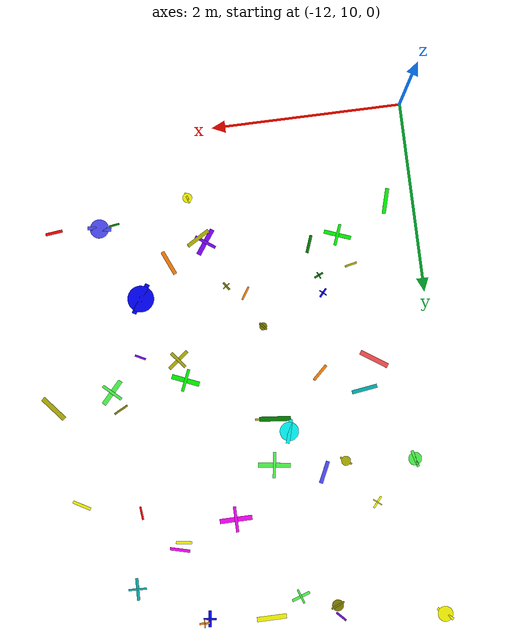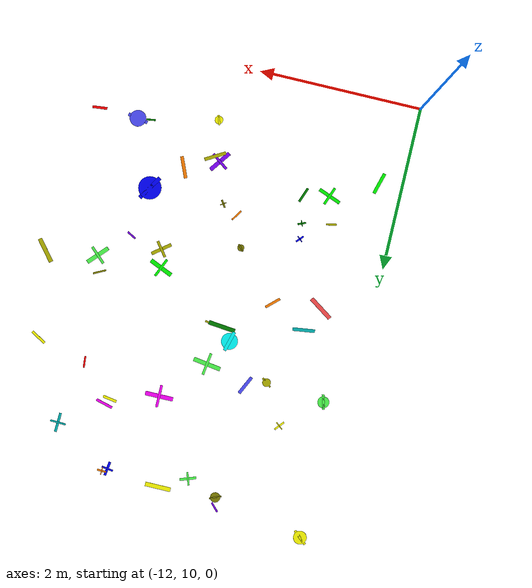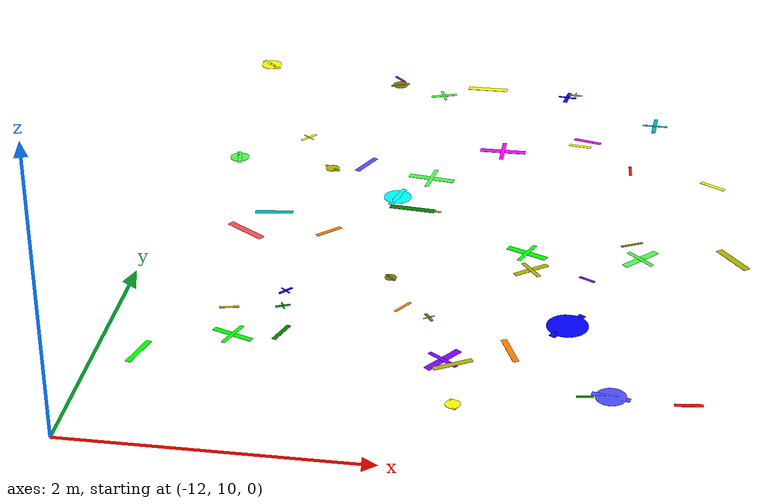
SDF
<sdf version="1.6">
 <world name="default">
  <model name="letter_S_308">
   <static>true</static>
   <pose>-11.72 11.00 0.009 0 0 4.443</pose>
   <link name="link">
    <visual name="visual">
     <geometry><box><size>0.27 0.04 0.002</size></box></geometry>
     <material>
      <ambient>0.0 1.0 0.0 1</ambient>
      <diffuse>0.0 1.0 0.0 1</diffuse>
      <specular>0.1 0.1 0.1 1</specular>
     </material>
    </visual>
   </link>
  </model>
  <model name="letter_O_314">
   <static>true</static>
   <pose>-11.67 13.73 0.010 0 0 1.831</pose>
   <link name="link">
    <visual name="visual">
     <geometry><box><size>0.18 0.03 0.002</size></box></geometry>
     <material>
      <ambient>0.3 1.0 0.3 1</ambient>
      <diffuse>0.3 1.0 0.3 1</diffuse>
      <specular>0.1 0.1 0.1 1</specular>
     </material>
    </visual>
    <visual name="visual2">
     <geometry><cylinder><radius>0.07</radius><length>0.002</length></cylinder></geometry>
     <material><ambient>0.3 1.0 0.3 1</ambient><diffuse>0.3 1.0 0.3 1</diffuse></material>
    </visual>
   </link>
  </model>
  <model name="letter_C_317">
   <static>true</static>
   <pose>-11.77 15.37 0.010 0 0 5.566</pose>
   <link name="link">
    <visual name="visual">
     <geometry><box><size>0.20 0.03 0.002</size></box></geometry>
     <material>
      <ambient>1.0 1.0 0.0 1</ambient>
      <diffuse>1.0 1.0 0.0 1</diffuse>
      <specular>0.1 0.1 0.1 1</specular>
     </material>
    </visual>
    <visual name="visual2">
     <geometry><cylinder><radius>0.08</radius><length>0.002</length></cylinder></geometry>
     <material><ambient>1.0 1.0 0.0 1</ambient><diffuse>1.0 1.0 0.0 1</diffuse></material>
    </visual>
   </link>
  </model>
  <model name="letter_F_384">
   <static>true</static>
   <pose>-11.17 11.29 0.007 0 0 5.918</pose>
   <link name="link">
    <visual name="visual">
     <geometry><box><size>0.29 0.04 0.002</size></box></geometry>
     <material>
      <ambient>0.0 1.0 0.0 1</ambient>
      <diffuse>0.0 1.0 0.0 1</diffuse>
      <specular>0.1 0.1 0.1 1</specular>
     </material>
    </visual>
    <visual name="visual2">
     <pose>0 0 0.001 0 0 1.57</pose>
     <geometry><box><size>0.23 0.03 0.001</size></box></geometry>
     <material><ambient>0.0 1.0 0.0 1</ambient><diffuse>0.0 1.0 0.0 1</diffuse></material>
    </visual>
   </link>
  </model>
  <model name="letter_R_385">
   <static>true</static>
   <pose>-10.86 11.35 0.013 0 0 1.218</pose>
   <link name="link">
    <visual name="visual">
     <geometry><box><size>0.19 0.03 0.002</size></box></geometry>
     <material>
      <ambient>0.0 0.5 0.0 1</ambient>
      <diffuse>0.0 0.5 0.0 1</diffuse>
      <specular>0.1 0.1 0.1 1</specular>
     </material>
    </visual>
   </link>
  </model>
  <model name="letter_L_386">
   <static>true</static>
   <pose>-10.94 11.88 0.006 0 0 3.983</pose>
   <link name="link">
    <visual name="visual">
     <geometry><box><size>0.11 0.02 0.002</size></box></geometry>
     <material>
      <ambient>0.0 0.0 1.0 1</ambient>
      <diffuse>0.0 0.0 1.0 1</diffuse>
      <specular>0.1 0.1 0.1 1</specular>
     </material>
    </visual>
    <visual name="visual2">
     <pose>0 0 0.001 0 0 1.57</pose>
     <geometry><box><size>0.09 0.01 0.001</size></box></geometry>
     <material><ambient>0.0 0.0 1.0 1</ambient><diffuse>0.0 0.0 1.0 1</diffuse></material>
    </visual>
   </link>
  </model>
  <model name="letter_T_387">
   <static>true</static>
   <pose>-10.92 11.69 0.004 0 0 0.412</pose>
   <link name="link">
    <visual name="visual">
     <geometry><box><size>0.10 0.02 0.002</size></box></geometry>
     <material>
      <ambient>0.0 0.5 0.0 1</ambient>
      <diffuse>0.0 0.5 0.0 1</diffuse>
      <specular>0.1 0.1 0.1 1</specular>
     </material>
    </visual>
    <visual name="visual2">
     <pose>0 0 0.001 0 0 1.57</pose>
     <geometry><box><size>0.08 0.01 0.001</size></box></geometry>
     <material><ambient>0.0 0.5 0.0 1</ambient><diffuse>0.0 0.5 0.0 1</diffuse></material>
    </visual>
   </link>
  </model>
  <model name="letter_Z_388">
   <static>true</static>
   <pose>-11.27 11.62 0.006 0 0 3.355</pose>
   <link name="link">
    <visual name="visual">
     <geometry><box><size>0.13 0.02 0.002</size></box></geometry>
     <material>
      <ambient>0.7 0.7 0.0 1</ambient>
      <diffuse>0.7 0.7 0.0 1</diffuse>
      <specular>0.1 0.1 0.1 1</specular>
     </material>
    </visual>
   </link>
  </model>
  <model name="letter_V_389">
   <static>true</static>
   <pose>-10.80 12.71 0.011 0 0 3.894</pose>
   <link name="link">
    <visual name="visual">
     <geometry><box><size>0.20 0.03 0.002</size></box></geometry>
     <material>
      <ambient>1.0 0.5 0.0 1</ambient>
      <diffuse>1.0 0.5 0.0 1</diffuse>
      <specular>0.1 0.1 0.1 1</specular>
     </material>
    </visual>
   </link>
  </model>
  <model name="letter_Y_390">
   <static>true</static>
   <pose>-11.24 12.94 0.006 0 0 0.137</pose>
   <link name="link">
    <visual name="visual">
     <geometry><box><size>0.27 0.04 0.002</size></box></geometry>
     <material>
      <ambient>0.0 0.7 0.7 1</ambient>
      <diffuse>0.0 0.7 0.7 1</diffuse>
      <specular>0.1 0.1 0.1 1</specular>
     </material>
    </visual>
   </link>
  </model>
  <model name="letter_R_391">
   <static>true</static>
   <pose>-11.38 12.64 0.011 0 0 2.548</pose>
   <link name="link">
    <visual name="visual">
     <geometry><box><size>0.32 0.05 0.002</size></box></geometry>
     <material>
      <ambient>1.0 0.3 0.3 1</ambient>
      <diffuse>1.0 0.3 0.3 1</diffuse>
      <specular>0.1 0.1 0.1 1</specular>
     </material>
    </visual>
   </link>
  </model>
  <model name="letter_M_392">
   <static>true</static>
   <pose>-10.71 13.75 0.009 0 0 4.270</pose>
   <link name="link">
    <visual name="visual">
     <geometry><box><size>0.24 0.04 0.002</size></box></geometry>
     <material>
      <ambient>0.3 0.3 1.0 1</ambient>
      <diffuse>0.3 0.3 1.0 1</diffuse>
      <specular>0.1 0.1 0.1 1</specular>
     </material>
    </visual>
   </link>
  </model>
  <model name="letter_A_393">
   <static>true</static>
   <pose>-11.22 14.13 0.008 0 0 0.886</pose>
   <link name="link">
    <visual name="visual">
     <geometry><box><size>0.14 0.02 0.002</size></box></geometry>
     <material>
      <ambient>1.0 1.0 0.0 1</ambient>
      <diffuse>1.0 1.0 0.0 1</diffuse>
      <specular>0.1 0.1 0.1 1</specular>
     </material>
    </visual>
    <visual name="visual2">
     <pose>0 0 0.001 0 0 1.57</pose>
     <geometry><box><size>0.11 0.01 0.001</size></box></geometry>
     <material><ambient>1.0 1.0 0.0 1</ambient><diffuse>1.0 1.0 0.0 1</diffuse></material>
    </visual>
   </link>
  </model>
  <model name="letter_G_394">
   <static>true</static>
   <pose>-10.95 13.66 0.008 0 0 2.500</pose>
   <link name="link">
    <visual name="visual">
     <geometry><box><size>0.14 0.02 0.002</size></box></geometry>
     <material>
      <ambient>0.7 0.7 0.0 1</ambient>
      <diffuse>0.7 0.7 0.0 1</diffuse>
      <specular>0.1 0.1 0.1 1</specular>
     </material>
    </visual>
    <visual name="visual2">
     <geometry><cylinder><radius>0.05</radius><length>0.002</length></cylinder></geometry>
     <material><ambient>0.7 0.7 0.0 1</ambient><diffuse>0.7 0.7 0.0 1</diffuse></material>
    </visual>
   </link>
  </model>
  <model name="letter_V_395">
   <static>true</static>
   <pose>-10.69 15.26 0.004 0 0 2.338</pose>
   <link name="link">
    <visual name="visual">
     <geometry><box><size>0.13 0.02 0.002</size></box></geometry>
     <material>
      <ambient>0.5 0.0 1.0 1</ambient>
      <diffuse>0.5 0.0 1.0 1</diffuse>
      <specular>0.1 0.1 0.1 1</specular>
     </material>
    </visual>
   </link>
  </model>
  <model name="letter_G_396">
   <static>true</static>
   <pose>-10.67 15.14 0.012 0 0 3.539</pose>
   <link name="link">
    <visual name="visual">
     <geometry><box><size>0.15 0.02 0.002</size></box></geometry>
     <material>
      <ambient>0.5 0.5 0.0 1</ambient>
      <diffuse>0.5 0.5 0.0 1</diffuse>
      <specular>0.1 0.1 0.1 1</specular>
     </material>
    </visual>
    <visual name="visual2">
     <geometry><cylinder><radius>0.06</radius><length>0.002</length></cylinder></geometry>
     <material><ambient>0.5 0.5 0.0 1</ambient><diffuse>0.5 0.5 0.0 1</diffuse></material>
    </visual>
   </link>
  </model>
  <model name="letter_G_462">
   <static>true</static>
   <pose>-9.65 10.70 0.004 0 0 1.880</pose>
   <link name="link">
    <visual name="visual">
     <geometry><box><size>0.12 0.02 0.002</size></box></geometry>
     <material>
      <ambient>1.0 1.0 0.0 1</ambient>
      <diffuse>1.0 1.0 0.0 1</diffuse>
      <specular>0.1 0.1 0.1 1</specular>
     </material>
    </visual>
    <visual name="visual2">
     <geometry><cylinder><radius>0.05</radius><length>0.002</length></cylinder></geometry>
     <material><ambient>1.0 1.0 0.0 1</ambient><diffuse>1.0 1.0 0.0 1</diffuse></material>
    </visual>
   </link>
  </model>
  <model name="letter_B_463">
   <static>true</static>
   <pose>-9.71 11.14 0.008 0 0 3.667</pose>
   <link name="link">
    <visual name="visual">
     <geometry><box><size>0.27 0.04 0.002</size></box></geometry>
     <material>
      <ambient>0.7 0.7 0.0 1</ambient>
      <diffuse>0.7 0.7 0.0 1</diffuse>
      <specular>0.1 0.1 0.1 1</specular>
     </material>
    </visual>
   </link>
  </model>
  <model name="letter_L_464">
   <static>true</static>
   <pose>-9.78 11.19 0.004 0 0 4.088</pose>
   <link name="link">
    <visual name="visual">
     <geometry><box><size>0.30 0.05 0.002</size></box></geometry>
     <material>
      <ambient>0.5 0.0 1.0 1</ambient>
      <diffuse>0.5 0.0 1.0 1</diffuse>
      <specular>0.1 0.1 0.1 1</specular>
     </material>
    </visual>
    <visual name="visual2">
     <pose>0 0 0.001 0 0 1.57</pose>
     <geometry><box><size>0.24 0.03 0.001</size></box></geometry>
     <material><ambient>0.5 0.0 1.0 1</ambient><diffuse>0.5 0.0 1.0 1</diffuse></material>
    </visual>
   </link>
  </model>
  <model name="letter_H_465">
   <static>true</static>
   <pose>-9.94 11.68 0.007 0 0 5.300</pose>
   <link name="link">
    <visual name="visual">
     <geometry><box><size>0.10 0.02 0.002</size></box></geometry>
     <material>
      <ambient>0.5 0.5 0.0 1</ambient>
      <diffuse>0.5 0.5 0.0 1</diffuse>
      <specular>0.1 0.1 0.1 1</specular>
     </material>
    </visual>
    <visual name="visual2">
     <pose>0 0 0.001 0 0 1.57</pose>
     <geometry><box><size>0.08 0.01 0.001</size></box></geometry>
     <material><ambient>0.5 0.5 0.0 1</ambient><diffuse>0.5 0.5 0.0 1</diffuse></material>
    </visual>
   </link>
  </model>
  <model name="letter_D_466">
   <static>true</static>
   <pose>-10.13 11.78 0.010 0 0 0.993</pose>
   <link name="link">
    <visual name="visual">
     <geometry><box><size>0.15 0.02 0.002</size></box></geometry>
     <material>
      <ambient>1.0 0.5 0.0 1</ambient>
      <diffuse>1.0 0.5 0.0 1</diffuse>
      <specular>0.1 0.1 0.1 1</specular>
     </material>
    </visual>
   </link>
  </model>
  <model name="letter_Q_467">
   <static>true</static>
   <pose>-10.27 12.15 0.008 0 0 5.452</pose>
   <link name="link">
    <visual name="visual">
     <geometry><box><size>0.10 0.02 0.002</size></box></geometry>
     <material>
      <ambient>0.5 0.5 0.0 1</ambient>
      <diffuse>0.5 0.5 0.0 1</diffuse>
      <specular>0.1 0.1 0.1 1</specular>
     </material>
    </visual>
    <visual name="visual2">
     <geometry><cylinder><radius>0.04</radius><length>0.002</length></cylinder></geometry>
     <material><ambient>0.5 0.5 0.0 1</ambient><diffuse>0.5 0.5 0.0 1</diffuse></material>
    </visual>
   </link>
  </model>
  <model name="letter_M_468">
   <static>true</static>
   <pose>-10.27 13.13 0.006 0 0 3.044</pose>
   <link name="link">
    <visual name="visual">
     <geometry><box><size>0.33 0.05 0.002</size></box></geometry>
     <material>
      <ambient>0.0 0.5 0.0 1</ambient>
      <diffuse>0.0 0.5 0.0 1</diffuse>
      <specular>0.1 0.1 0.1 1</specular>
     </material>
    </visual>
   </link>
  </model>
  <model name="letter_G_469">
   <static>true</static>
   <pose>-10.40 13.28 0.012 0 0 4.449</pose>
   <link name="link">
    <visual name="visual">
     <geometry><box><size>0.25 0.04 0.002</size></box></geometry>
     <material>
      <ambient>0.0 1.0 1.0 1</ambient>
      <diffuse>0.0 1.0 1.0 1</diffuse>
      <specular>0.1 0.1 0.1 1</specular>
     </material>
    </visual>
    <visual name="visual2">
     <geometry><cylinder><radius>0.10</radius><length>0.002</length></cylinder></geometry>
     <material><ambient>0.0 1.0 1.0 1</ambient><diffuse>0.0 1.0 1.0 1</diffuse></material>
    </visual>
   </link>
  </model>
  <model name="letter_V_470">
   <static>true</static>
   <pose>-10.11 13.12 0.005 0 0 2.933</pose>
   <link name="link">
    <visual name="visual">
     <geometry><box><size>0.10 0.02 0.002</size></box></geometry>
     <material>
      <ambient>0.7 0.7 0.0 1</ambient>
      <diffuse>0.7 0.7 0.0 1</diffuse>
      <specular>0.1 0.1 0.1 1</specular>
     </material>
    </visual>
   </link>
  </model>
  <model name="letter_H_471">
   <static>true</static>
   <pose>-9.73 14.12 0.004 0 0 0.005</pose>
   <link name="link">
    <visual name="visual">
     <geometry><box><size>0.34 0.05 0.002</size></box></geometry>
     <material>
      <ambient>1.0 0.0 1.0 1</ambient>
      <diffuse>1.0 0.0 1.0 1</diffuse>
      <specular>0.1 0.1 0.1 1</specular>
     </material>
    </visual>
    <visual name="visual2">
     <pose>0 0 0.001 0 0 1.57</pose>
     <geometry><box><size>0.27 0.03 0.001</size></box></geometry>
     <material><ambient>1.0 0.0 1.0 1</ambient><diffuse>1.0 0.0 1.0 1</diffuse></material>
    </visual>
   </link>
  </model>
  <model name="letter_I_472">
   <static>true</static>
   <pose>-10.20 13.61 0.006 0 0 3.001</pose>
   <link name="link">
    <visual name="visual">
     <geometry><box><size>0.34 0.05 0.002</size></box></geometry>
     <material>
      <ambient>0.3 1.0 0.3 1</ambient>
      <diffuse>0.3 1.0 0.3 1</diffuse>
      <specular>0.1 0.1 0.1 1</specular>
     </material>
    </visual>
    <visual name="visual2">
     <pose>0 0 0.001 0 0 1.57</pose>
     <geometry><box><size>0.27 0.03 0.001</size></box></geometry>
     <material><ambient>0.3 1.0 0.3 1</ambient><diffuse>0.3 1.0 0.3 1</diffuse></material>
    </visual>
   </link>
  </model>
  <model name="letter_U_473">
   <static>true</static>
   <pose>-9.97 15.18 0.003 0 0 0.002</pose>
   <link name="link">
    <visual name="visual">
     <geometry><box><size>0.31 0.05 0.002</size></box></geometry>
     <material>
      <ambient>1.0 1.0 0.0 1</ambient>
      <diffuse>1.0 1.0 0.0 1</diffuse>
      <specular>0.1 0.1 0.1 1</specular>
     </material>
    </visual>
   </link>
  </model>
  <model name="letter_E_474">
   <static>true</static>
   <pose>-10.30 15.00 0.009 0 0 3.479</pose>
   <link name="link">
    <visual name="visual">
     <geometry><box><size>0.20 0.03 0.002</size></box></geometry>
     <material>
      <ambient>0.3 1.0 0.3 1</ambient>
      <diffuse>0.3 1.0 0.3 1</diffuse>
      <specular>0.1 0.1 0.1 1</specular>
     </material>
    </visual>
    <visual name="visual2">
     <pose>0 0 0.001 0 0 1.57</pose>
     <geometry><box><size>0.16 0.02 0.001</size></box></geometry>
     <material><ambient>0.3 1.0 0.3 1</ambient><diffuse>0.3 1.0 0.3 1</diffuse></material>
    </visual>
   </link>
  </model>
  <model name="letter_J_543">
   <static>true</static>
   <pose>-8.85 10.89 0.010 0 0 3.290</pose>
   <link name="link">
    <visual name="visual">
     <geometry><box><size>0.11 0.02 0.002</size></box></geometry>
     <material>
      <ambient>0.0 0.5 0.0 1</ambient>
      <diffuse>0.0 0.5 0.0 1</diffuse>
      <specular>0.1 0.1 0.1 1</specular>
     </material>
    </visual>
   </link>
  </model>
  <model name="letter_C_544">
   <static>true</static>
   <pose>-8.69 10.91 0.011 0 0 6.091</pose>
   <link name="link">
    <visual name="visual">
     <geometry><box><size>0.25 0.04 0.002</size></box></geometry>
     <material>
      <ambient>0.3 0.3 1.0 1</ambient>
      <diffuse>0.3 0.3 1.0 1</diffuse>
      <specular>0.1 0.1 0.1 1</specular>
     </material>
    </visual>
    <visual name="visual2">
     <geometry><cylinder><radius>0.10</radius><length>0.002</length></cylinder></geometry>
     <material><ambient>0.3 0.3 1.0 1</ambient><diffuse>0.3 0.3 1.0 1</diffuse></material>
    </visual>
   </link>
  </model>
  <model name="letter_N_545">
   <static>true</static>
   <pose>-9.37 11.36 0.003 0 0 1.976</pose>
   <link name="link">
    <visual name="visual">
     <geometry><box><size>0.27 0.04 0.002</size></box></geometry>
     <material>
      <ambient>1.0 0.5 0.0 1</ambient>
      <diffuse>1.0 0.5 0.0 1</diffuse>
      <specular>0.1 0.1 0.1 1</specular>
     </material>
    </visual>
   </link>
  </model>
  <model name="letter_G_546">
   <static>true</static>
   <pose>-9.03 11.70 0.010 0 0 4.159</pose>
   <link name="link">
    <visual name="visual">
     <geometry><box><size>0.34 0.05 0.002</size></box></geometry>
     <material>
      <ambient>0.0 0.0 1.0 1</ambient>
      <diffuse>0.0 0.0 1.0 1</diffuse>
      <specular>0.1 0.1 0.1 1</specular>
     </material>
    </visual>
    <visual name="visual2">
     <geometry><cylinder><radius>0.14</radius><length>0.002</length></cylinder></geometry>
     <material><ambient>0.0 0.0 1.0 1</ambient><diffuse>0.0 0.0 1.0 1</diffuse></material>
    </visual>
   </link>
  </model>
  <model name="letter_H_547">
   <static>true</static>
   <pose>-9.34 12.39 0.007 0 0 0.660</pose>
   <link name="link">
    <visual name="visual">
     <geometry><box><size>0.26 0.04 0.002</size></box></geometry>
     <material>
      <ambient>0.7 0.7 0.0 1</ambient>
      <diffuse>0.7 0.7 0.0 1</diffuse>
      <specular>0.1 0.1 0.1 1</specular>
     </material>
    </visual>
    <visual name="visual2">
     <pose>0 0 0.001 0 0 1.57</pose>
     <geometry><box><size>0.21 0.03 0.001</size></box></geometry>
     <material><ambient>0.7 0.7 0.0 1</ambient><diffuse>0.7 0.7 0.0 1</diffuse></material>
    </visual>
   </link>
  </model>
  <model name="letter_D_548">
   <static>true</static>
   <pose>-8.95 12.31 0.011 0 0 5.806</pose>
   <link name="link">
    <visual name="visual">
     <geometry><box><size>0.12 0.02 0.002</size></box></geometry>
     <material>
      <ambient>0.5 0.0 1.0 1</ambient>
      <diffuse>0.5 0.0 1.0 1</diffuse>
      <specular>0.1 0.1 0.1 1</specular>
     </material>
    </visual>
   </link>
  </model>
  <model name="letter_E_549">
   <static>true</static>
   <pose>-9.39 12.61 0.009 0 0 5.881</pose>
   <link name="link">
    <visual name="visual">
     <geometry><box><size>0.30 0.05 0.002</size></box></geometry>
     <material>
      <ambient>0.0 1.0 0.0 1</ambient>
      <diffuse>0.0 1.0 0.0 1</diffuse>
      <specular>0.1 0.1 0.1 1</specular>
     </material>
    </visual>
    <visual name="visual2">
     <pose>0 0 0.001 0 0 1.57</pose>
     <geometry><box><size>0.24 0.03 0.001</size></box></geometry>
     <material><ambient>0.0 1.0 0.0 1</ambient><diffuse>0.0 1.0 0.0 1</diffuse></material>
    </visual>
   </link>
  </model>
  <model name="letter_L_550">
   <static>true</static>
   <pose>-8.61 12.64 0.009 0 0 0.827</pose>
   <link name="link">
    <visual name="visual">
     <geometry><box><size>0.30 0.05 0.002</size></box></geometry>
     <material>
      <ambient>0.3 1.0 0.3 1</ambient>
      <diffuse>0.3 1.0 0.3 1</diffuse>
      <specular>0.1 0.1 0.1 1</specular>
     </material>
    </visual>
    <visual name="visual2">
     <pose>0 0 0.001 0 0 1.57</pose>
     <geometry><box><size>0.24 0.03 0.001</size></box></geometry>
     <material><ambient>0.3 1.0 0.3 1</ambient><diffuse>0.3 1.0 0.3 1</diffuse></material>
    </visual>
   </link>
  </model>
  <model name="letter_D_551">
   <static>true</static>
   <pose>-8.68 12.83 0.010 0 0 3.617</pose>
   <link name="link">
    <visual name="visual">
     <geometry><box><size>0.16 0.02 0.002</size></box></geometry>
     <material>
      <ambient>0.5 0.5 0.0 1</ambient>
      <diffuse>0.5 0.5 0.0 1</diffuse>
      <specular>0.1 0.1 0.1 1</specular>
     </material>
    </visual>
   </link>
  </model>
  <model name="letter_V_552">
   <static>true</static>
   <pose>-9.16 14.29 0.004 0 0 2.985</pose>
   <link name="link">
    <visual name="visual">
     <geometry><box><size>0.17 0.03 0.002</size></box></geometry>
     <material>
      <ambient>1.0 1.0 0.0 1</ambient>
      <diffuse>1.0 1.0 0.0 1</diffuse>
      <specular>0.1 0.1 0.1 1</specular>
     </material>
    </visual>
   </link>
  </model>
  <model name="letter_J_553">
   <static>true</static>
   <pose>-9.11 14.36 0.012 0 0 6.032</pose>
   <link name="link">
    <visual name="visual">
     <geometry><box><size>0.21 0.03 0.002</size></box></geometry>
     <material>
      <ambient>1.0 0.0 1.0 1</ambient>
      <diffuse>1.0 0.0 1.0 1</diffuse>
      <specular>0.1 0.1 0.1 1</specular>
     </material>
    </visual>
   </link>
  </model>
  <model name="letter_M_554">
   <static>true</static>
   <pose>-8.76 13.93 0.008 0 0 4.804</pose>
   <link name="link">
    <visual name="visual">
     <geometry><box><size>0.14 0.02 0.002</size></box></geometry>
     <material>
      <ambient>1.0 0.0 0.0 1</ambient>
      <diffuse>1.0 0.0 0.0 1</diffuse>
      <specular>0.1 0.1 0.1 1</specular>
     </material>
    </visual>
   </link>
  </model>
  <model name="letter_T_555">
   <static>true</static>
   <pose>-9.27 15.15 0.011 0 0 6.234</pose>
   <link name="link">
    <visual name="visual">
     <geometry><box><size>0.11 0.02 0.002</size></box></geometry>
     <material>
      <ambient>1.0 0.5 0.0 1</ambient>
      <diffuse>1.0 0.5 0.0 1</diffuse>
      <specular>0.1 0.1 0.1 1</specular>
     </material>
    </visual>
    <visual name="visual2">
     <pose>0 0 0.001 0 0 1.57</pose>
     <geometry><box><size>0.09 0.01 0.001</size></box></geometry>
     <material><ambient>1.0 0.5 0.0 1</ambient><diffuse>1.0 0.5 0.0 1</diffuse></material>
    </visual>
   </link>
  </model>
  <model name="letter_F_556">
   <static>true</static>
   <pose>-8.62 14.71 0.003 0 0 4.676</pose>
   <link name="link">
    <visual name="visual">
     <geometry><box><size>0.23 0.03 0.002</size></box></geometry>
     <material>
      <ambient>0.0 0.7 0.7 1</ambient>
      <diffuse>0.0 0.7 0.7 1</diffuse>
      <specular>0.1 0.1 0.1 1</specular>
     </material>
    </visual>
    <visual name="visual2">
     <pose>0 0 0.001 0 0 1.57</pose>
     <geometry><box><size>0.19 0.02 0.001</size></box></geometry>
     <material><ambient>0.0 0.7 0.7 1</ambient><diffuse>0.0 0.7 0.7 1</diffuse></material>
    </visual>
   </link>
  </model>
  <model name="letter_I_557">
   <static>true</static>
   <pose>-9.33 15.11 0.006 0 0 1.427</pose>
   <link name="link">
    <visual name="visual">
     <geometry><box><size>0.17 0.03 0.002</size></box></geometry>
     <material>
      <ambient>0.0 0.0 1.0 1</ambient>
      <diffuse>0.0 0.0 1.0 1</diffuse>
      <specular>0.1 0.1 0.1 1</specular>
     </material>
    </visual>
    <visual name="visual2">
     <pose>0 0 0.001 0 0 1.57</pose>
     <geometry><box><size>0.14 0.02 0.001</size></box></geometry>
     <material><ambient>0.0 0.0 1.0 1</ambient><diffuse>0.0 0.0 1.0 1</diffuse></material>
    </visual>
   </link>
  </model>
  <model name="letter_U_623">
   <static>true</static>
   <pose>-8.21 10.89 0.008 0 0 3.250</pose>
   <link name="link">
    <visual name="visual">
     <geometry><box><size>0.18 0.03 0.002</size></box></geometry>
     <material>
      <ambient>1.0 0.0 0.0 1</ambient>
      <diffuse>1.0 0.0 0.0 1</diffuse>
      <specular>0.1 0.1 0.1 1</specular>
     </material>
    </visual>
   </link>
  </model>
  <model name="letter_K_628">
   <static>true</static>
   <pose>-7.98 12.73 0.004 0 0 2.261</pose>
   <link name="link">
    <visual name="visual">
     <geometry><box><size>0.31 0.05 0.002</size></box></geometry>
     <material>
      <ambient>0.7 0.7 0.0 1</ambient>
      <diffuse>0.7 0.7 0.0 1</diffuse>
      <specular>0.1 0.1 0.1 1</specular>
     </material>
    </visual>
   </link>
  </model>
  <model name="letter_U_630">
   <static>true</static>
   <pose>-8.15 13.77 0.013 0 0 2.623</pose>
   <link name="link">
    <visual name="visual">
     <geometry><box><size>0.20 0.03 0.002</size></box></geometry>
     <material>
      <ambient>1.0 1.0 0.0 1</ambient>
      <diffuse>1.0 1.0 0.0 1</diffuse>
      <specular>0.1 0.1 0.1 1</specular>
     </material>
    </visual>
   </link>
  </model>
 </world>
</sdf>
